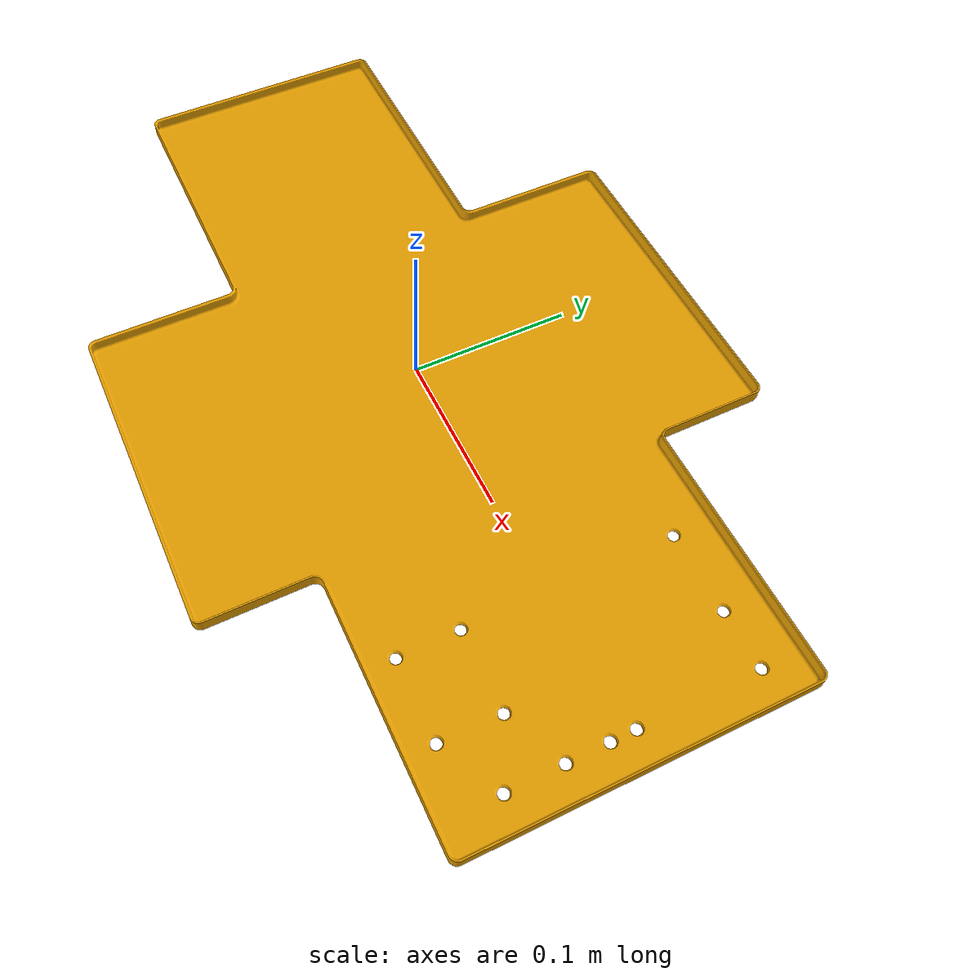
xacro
<?xml version="1.0"?>
<robot name="vehicle" xmlns:xacro="http://ros.org/wiki/xacro">

    <link name="base_link">
        <visual>
            <origin xyz="0 0 0" rpy="0 0 0"/>
            <geometry>
                <mesh filename="package://autonomous_vehicle_description/meshes/Base.stl"/>
            </geometry>
        </visual>
        <collision>
            <origin xyz="0 0 0"  rpy="0 0 0"/>
            <geometry>
                <box size="0.53 0.10 0.01"/>
            </geometry>
        </collision>
    </link>
    <inertial>
        <mass value="3" />
        <inertia ixx="0.163866" ixy="-0.000150" ixz="0.000062" iyy="0.418963" iyz="0.000000" izz="0.582709" />
    </inertial>
</robot>
